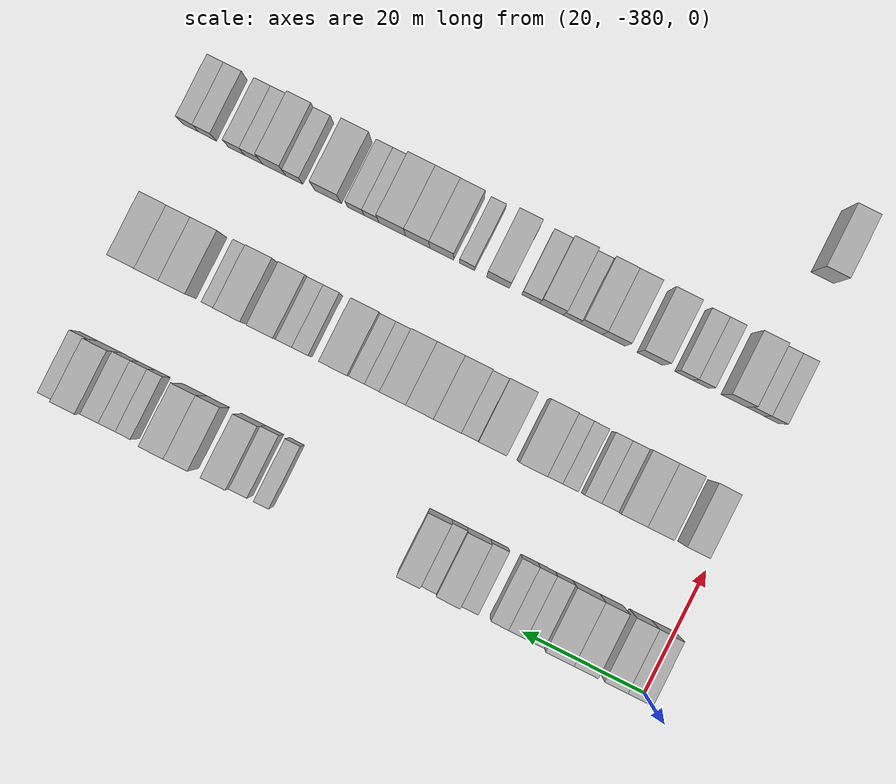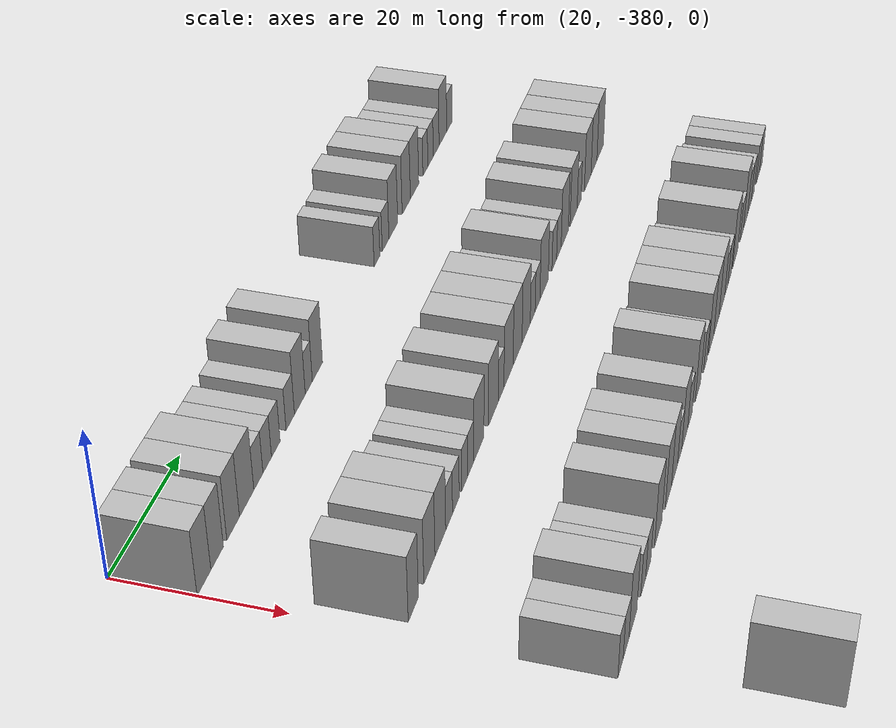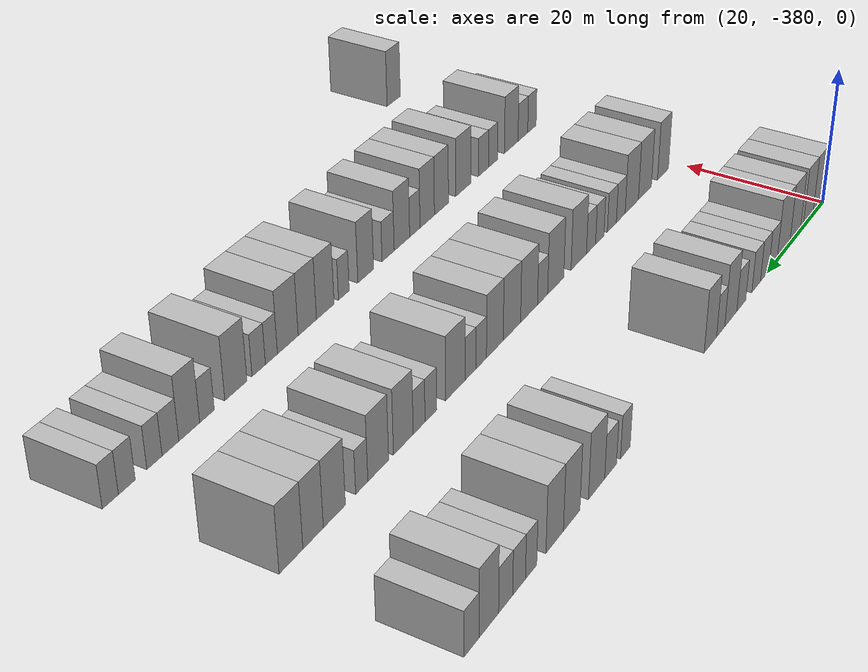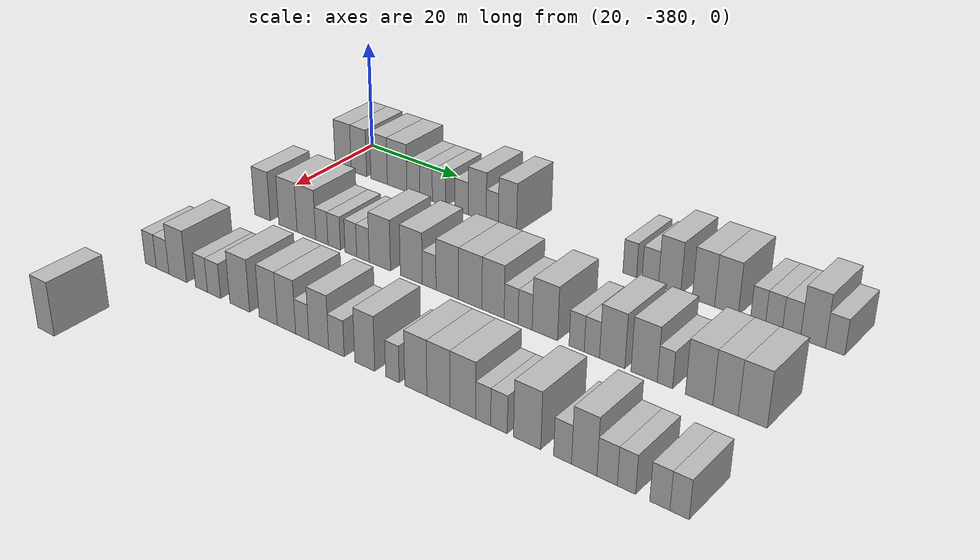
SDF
<sdf version="1.6">
 <world name="default">
  <model name="building_1">
   <static>1</static>
   <pose>25.0000 -378.0551 0 0.000000 0.000000 0.000000</pose>
   <link name="link">
    <pose>0 0 4.50 0 0 0</pose>
    <collision name="collision"><geometry><box><size>10.0000 3.8898 9.0000</size></box></geometry></collision>
    <visual name="visual">
     <cast_shadows>0</cast_shadows>
     <geometry><box><size>10.0000 3.8898 9.0000</size></box></geometry>
     <material>
      <script>
       <uri>model://HANNAS_wall/materials/scripts</uri>
       <uri>model://HANNAS_wall/materials/textures</uri>
       <name>vrc/HANNAS_wall</name>
      </script>
     </material>
    </visual>
   </link>
  </model>
  <model name="building_2">
   <static>1</static>
   <pose>25.0000 -374.2977 0 0.000000 0.000000 0.000000</pose>
   <link name="link">
    <pose>0 0 4.50 0 0 0</pose>
    <collision name="collision"><geometry><box><size>10.0000 3.6250 9.0000</size></box></geometry></collision>
    <visual name="visual">
     <cast_shadows>0</cast_shadows>
     <geometry><box><size>10.0000 3.6250 9.0000</size></box></geometry>
     <material>
      <script>
       <uri>model://HANNAS_wall/materials/scripts</uri>
       <uri>model://HANNAS_wall/materials/textures</uri>
       <name>vrc/HANNAS_wall</name>
      </script>
     </material>
    </visual>
   </link>
  </model>
  <model name="building_3">
   <static>1</static>
   <pose>25.0000 -369.5927 0 0.000000 0.000000 0.000000</pose>
   <link name="link">
    <pose>0 0 4.50 0 0 0</pose>
    <collision name="collision"><geometry><box><size>10.0000 3.7850 9.0000</size></box></geometry></collision>
    <visual name="visual">
     <cast_shadows>0</cast_shadows>
     <geometry><box><size>10.0000 3.7850 9.0000</size></box></geometry>
     <material>
      <script>
       <uri>model://HANNAS_wall/materials/scripts</uri>
       <uri>model://HANNAS_wall/materials/textures</uri>
       <name>vrc/HANNAS_wall</name>
      </script>
     </material>
    </visual>
   </link>
  </model>
  <model name="building_4">
   <static>1</static>
   <pose>25.0000 -365.4799 0 0.000000 0.000000 0.000000</pose>
   <link name="link">
    <pose>0 0 4.50 0 0 0</pose>
    <collision name="collision"><geometry><box><size>10.0000 4.4405 9.0000</size></box></geometry></collision>
    <visual name="visual">
     <cast_shadows>0</cast_shadows>
     <geometry><box><size>10.0000 4.4405 9.0000</size></box></geometry>
     <material>
      <script>
       <uri>model://HANNAS_wall/materials/scripts</uri>
       <uri>model://HANNAS_wall/materials/textures</uri>
       <name>vrc/HANNAS_wall</name>
      </script>
     </material>
    </visual>
   </link>
  </model>
  <model name="building_5">
   <static>1</static>
   <pose>25.0000 -361.8172 0 0.000000 0.000000 0.000000</pose>
   <link name="link">
    <pose>0 0 3.00 0 0 0</pose>
    <collision name="collision"><geometry><box><size>10.0000 2.8849 6.0000</size></box></geometry></collision>
    <visual name="visual">
     <cast_shadows>0</cast_shadows>
     <geometry><box><size>10.0000 2.8849 6.0000</size></box></geometry>
     <material>
      <script>
       <uri>model://HANNAS_wall/materials/scripts</uri>
       <uri>model://HANNAS_wall/materials/textures</uri>
       <name>vrc/HANNAS_wall</name>
      </script>
     </material>
    </visual>
   </link>
  </model>
  <model name="building_6">
   <static>1</static>
   <pose>25.0000 -358.9868 0 0.000000 0.000000 0.000000</pose>
   <link name="link">
    <pose>0 0 3.00 0 0 0</pose>
    <collision name="collision"><geometry><box><size>10.0000 2.7758 6.0000</size></box></geometry></collision>
    <visual name="visual">
     <cast_shadows>0</cast_shadows>
     <geometry><box><size>10.0000 2.7758 6.0000</size></box></geometry>
     <material>
      <script>
       <uri>model://HANNAS_wall/materials/scripts</uri>
       <uri>model://HANNAS_wall/materials/textures</uri>
       <name>vrc/HANNAS_wall</name>
      </script>
     </material>
    </visual>
   </link>
  </model>
  <model name="building_7">
   <static>1</static>
   <pose>25.0000 -356.1821 0 0.000000 0.000000 0.000000</pose>
   <link name="link">
    <pose>0 0 3.00 0 0 0</pose>
    <collision name="collision"><geometry><box><size>10.0000 2.8337 6.0000</size></box></geometry></collision>
    <visual name="visual">
     <cast_shadows>0</cast_shadows>
     <geometry><box><size>10.0000 2.8337 6.0000</size></box></geometry>
     <material>
      <script>
       <uri>model://HANNAS_wall/materials/scripts</uri>
       <uri>model://HANNAS_wall/materials/textures</uri>
       <name>vrc/HANNAS_wall</name>
      </script>
     </material>
    </visual>
   </link>
  </model>
  <model name="building_8">
   <static>1</static>
   <pose>25.0000 -351.3265 0 0.000000 0.000000 0.000000</pose>
   <link name="link">
    <pose>0 0 3.00 0 0 0</pose>
    <collision name="collision"><geometry><box><size>10.0000 2.8775 6.0000</size></box></geometry></collision>
    <visual name="visual">
     <cast_shadows>0</cast_shadows>
     <geometry><box><size>10.0000 2.8775 6.0000</size></box></geometry>
     <material>
      <script>
       <uri>model://HANNAS_wall/materials/scripts</uri>
       <uri>model://HANNAS_wall/materials/textures</uri>
       <name>vrc/HANNAS_wall</name>
      </script>
     </material>
    </visual>
   </link>
  </model>
  <model name="building_9">
   <static>1</static>
   <pose>25.0000 -347.9965 0 0.000000 0.000000 0.000000</pose>
   <link name="link">
    <pose>0 0 4.50 0 0 0</pose>
    <collision name="collision"><geometry><box><size>10.0000 3.7824 9.0000</size></box></geometry></collision>
    <visual name="visual">
     <cast_shadows>0</cast_shadows>
     <geometry><box><size>10.0000 3.7824 9.0000</size></box></geometry>
     <material>
      <script>
       <uri>model://HANNAS_wall/materials/scripts</uri>
       <uri>model://HANNAS_wall/materials/textures</uri>
       <name>vrc/HANNAS_wall</name>
      </script>
     </material>
    </visual>
   </link>
  </model>
  <model name="building_10">
   <static>1</static>
   <pose>25.0000 -344.8504 0 0.000000 0.000000 0.000000</pose>
   <link name="link">
    <pose>0 0 3.00 0 0 0</pose>
    <collision name="collision"><geometry><box><size>10.0000 2.5098 6.0000</size></box></geometry></collision>
    <visual name="visual">
     <cast_shadows>0</cast_shadows>
     <geometry><box><size>10.0000 2.5098 6.0000</size></box></geometry>
     <material>
      <script>
       <uri>model://HANNAS_wall/materials/scripts</uri>
       <uri>model://HANNAS_wall/materials/textures</uri>
       <name>vrc/HANNAS_wall</name>
      </script>
     </material>
    </visual>
   </link>
  </model>
  <model name="building_11">
   <static>1</static>
   <pose>25.0000 -341.7378 0 0.000000 0.000000 0.000000</pose>
   <link name="link">
    <pose>0 0 4.50 0 0 0</pose>
    <collision name="collision"><geometry><box><size>10.0000 3.7155 9.0000</size></box></geometry></collision>
    <visual name="visual">
     <cast_shadows>0</cast_shadows>
     <geometry><box><size>10.0000 3.7155 9.0000</size></box></geometry>
     <material>
      <script>
       <uri>model://HANNAS_wall/materials/scripts</uri>
       <uri>model://HANNAS_wall/materials/textures</uri>
       <name>vrc/HANNAS_wall</name>
      </script>
     </material>
    </visual>
   </link>
  </model>
  <model name="building_12">
   <static>1</static>
   <pose>25.0000 -318.1949 0 0.000000 0.000000 0.000000</pose>
   <link name="link">
    <pose>0 0 3.00 0 0 0</pose>
    <collision name="collision"><geometry><box><size>10.0000 2.4568 6.0000</size></box></geometry></collision>
    <visual name="visual">
     <cast_shadows>0</cast_shadows>
     <geometry><box><size>10.0000 2.4568 6.0000</size></box></geometry>
     <material>
      <script>
       <uri>model://HANNAS_wall/materials/scripts</uri>
       <uri>model://HANNAS_wall/materials/textures</uri>
       <name>vrc/HANNAS_wall</name>
      </script>
     </material>
    </visual>
   </link>
  </model>
  <model name="building_13">
   <static>1</static>
   <pose>25.0000 -314.5028 0 0.000000 0.000000 0.000000</pose>
   <link name="link">
    <pose>0 0 3.00 0 0 0</pose>
    <collision name="collision"><geometry><box><size>10.0000 2.9275 6.0000</size></box></geometry></collision>
    <visual name="visual">
     <cast_shadows>0</cast_shadows>
     <geometry><box><size>10.0000 2.9275 6.0000</size></box></geometry>
     <material>
      <script>
       <uri>model://HANNAS_wall/materials/scripts</uri>
       <uri>model://HANNAS_wall/materials/textures</uri>
       <name>vrc/HANNAS_wall</name>
      </script>
     </material>
    </visual>
   </link>
  </model>
  <model name="building_14">
   <static>1</static>
   <pose>25.0000 -311.0786 0 0.000000 0.000000 0.000000</pose>
   <link name="link">
    <pose>0 0 4.50 0 0 0</pose>
    <collision name="collision"><geometry><box><size>10.0000 3.9210 9.0000</size></box></geometry></collision>
    <visual name="visual">
     <cast_shadows>0</cast_shadows>
     <geometry><box><size>10.0000 3.9210 9.0000</size></box></geometry>
     <material>
      <script>
       <uri>model://HANNAS_wall/materials/scripts</uri>
       <uri>model://HANNAS_wall/materials/textures</uri>
       <name>vrc/HANNAS_wall</name>
      </script>
     </material>
    </visual>
   </link>
  </model>
  <model name="building_15">
   <static>1</static>
   <pose>25.0000 -305.2178 0 0.000000 0.000000 0.000000</pose>
   <link name="link">
    <pose>0 0 4.50 0 0 0</pose>
    <collision name="collision"><geometry><box><size>10.0000 3.8006 9.0000</size></box></geometry></collision>
    <visual name="visual">
     <cast_shadows>0</cast_shadows>
     <geometry><box><size>10.0000 3.8006 9.0000</size></box></geometry>
     <material>
      <script>
       <uri>model://HANNAS_wall/materials/scripts</uri>
       <uri>model://HANNAS_wall/materials/textures</uri>
       <name>vrc/HANNAS_wall</name>
      </script>
     </material>
    </visual>
   </link>
  </model>
  <model name="building_16">
   <static>1</static>
   <pose>25.0000 -301.3512 0 0.000000 0.000000 0.000000</pose>
   <link name="link">
    <pose>0 0 4.50 0 0 0</pose>
    <collision name="collision"><geometry><box><size>10.0000 3.9326 9.0000</size></box></geometry></collision>
    <visual name="visual">
     <cast_shadows>0</cast_shadows>
     <geometry><box><size>10.0000 3.9326 9.0000</size></box></geometry>
     <material>
      <script>
       <uri>model://HANNAS_wall/materials/scripts</uri>
       <uri>model://HANNAS_wall/materials/textures</uri>
       <name>vrc/HANNAS_wall</name>
      </script>
     </material>
    </visual>
   </link>
  </model>
  <model name="building_17">
   <static>1</static>
   <pose>25.0000 -296.1705 0 0.000000 0.000000 0.000000</pose>
   <link name="link">
    <pose>0 0 3.00 0 0 0</pose>
    <collision name="collision"><geometry><box><size>10.0000 2.4288 6.0000</size></box></geometry></collision>
    <visual name="visual">
     <cast_shadows>0</cast_shadows>
     <geometry><box><size>10.0000 2.4288 6.0000</size></box></geometry>
     <material>
      <script>
       <uri>model://HANNAS_wall/materials/scripts</uri>
       <uri>model://HANNAS_wall/materials/textures</uri>
       <name>vrc/HANNAS_wall</name>
      </script>
     </material>
    </visual>
   </link>
  </model>
  <model name="building_18">
   <static>1</static>
   <pose>25.0000 -293.6115 0 0.000000 0.000000 0.000000</pose>
   <link name="link">
    <pose>0 0 3.00 0 0 0</pose>
    <collision name="collision"><geometry><box><size>10.0000 2.6891 6.0000</size></box></geometry></collision>
    <visual name="visual">
     <cast_shadows>0</cast_shadows>
     <geometry><box><size>10.0000 2.6891 6.0000</size></box></geometry>
     <material>
      <script>
       <uri>model://HANNAS_wall/materials/scripts</uri>
       <uri>model://HANNAS_wall/materials/textures</uri>
       <name>vrc/HANNAS_wall</name>
      </script>
     </material>
    </visual>
   </link>
  </model>
  <model name="building_19">
   <static>1</static>
   <pose>25.0000 -290.8192 0 0.000000 0.000000 0.000000</pose>
   <link name="link">
    <pose>0 0 3.00 0 0 0</pose>
    <collision name="collision"><geometry><box><size>10.0000 2.8954 6.0000</size></box></geometry></collision>
    <visual name="visual">
     <cast_shadows>0</cast_shadows>
     <geometry><box><size>10.0000 2.8954 6.0000</size></box></geometry>
     <material>
      <script>
       <uri>model://HANNAS_wall/materials/scripts</uri>
       <uri>model://HANNAS_wall/materials/textures</uri>
       <name>vrc/HANNAS_wall</name>
      </script>
     </material>
    </visual>
   </link>
  </model>
  <model name="building_20">
   <static>1</static>
   <pose>25.0000 -287.4225 0 0.000000 0.000000 0.000000</pose>
   <link name="link">
    <pose>0 0 4.50 0 0 0</pose>
    <collision name="collision"><geometry><box><size>10.0000 3.8981 9.0000</size></box></geometry></collision>
    <visual name="visual">
     <cast_shadows>0</cast_shadows>
     <geometry><box><size>10.0000 3.8981 9.0000</size></box></geometry>
     <material>
      <script>
       <uri>model://HANNAS_wall/materials/scripts</uri>
       <uri>model://HANNAS_wall/materials/textures</uri>
       <name>vrc/HANNAS_wall</name>
      </script>
     </material>
    </visual>
   </link>
  </model>
  <model name="building_21">
   <static>1</static>
   <pose>25.0000 -284.0055 0 0.000000 0.000000 0.000000</pose>
   <link name="link">
    <pose>0 0 3.00 0 0 0</pose>
    <collision name="collision"><geometry><box><size>10.0000 2.9358 6.0000</size></box></geometry></collision>
    <visual name="visual">
     <cast_shadows>0</cast_shadows>
     <geometry><box><size>10.0000 2.9358 6.0000</size></box></geometry>
     <material>
      <script>
       <uri>model://HANNAS_wall/materials/scripts</uri>
       <uri>model://HANNAS_wall/materials/textures</uri>
       <name>vrc/HANNAS_wall</name>
      </script>
     </material>
    </visual>
   </link>
  </model>
  <model name="building_182">
   <static>1</static>
   <pose>47.0000 -376.1830 0 0.000000 0.000000 0.000000</pose>
   <link name="link">
    <pose>0 0 4.50 0 0 0</pose>
    <collision name="collision"><geometry><box><size>10.0000 3.6340 9.0000</size></box></geometry></collision>
    <visual name="visual">
     <cast_shadows>0</cast_shadows>
     <geometry><box><size>10.0000 3.6340 9.0000</size></box></geometry>
     <material>
      <script>
       <uri>model://HANNAS_wall/materials/scripts</uri>
       <uri>model://HANNAS_wall/materials/textures</uri>
       <name>vrc/HANNAS_wall</name>
      </script>
     </material>
    </visual>
   </link>
  </model>
  <model name="building_183">
   <static>1</static>
   <pose>47.0000 -370.2829 0 0.000000 0.000000 0.000000</pose>
   <link name="link">
    <pose>0 0 4.50 0 0 0</pose>
    <collision name="collision"><geometry><box><size>10.0000 4.1661 9.0000</size></box></geometry></collision>
    <visual name="visual">
     <cast_shadows>0</cast_shadows>
     <geometry><box><size>10.0000 4.1661 9.0000</size></box></geometry>
     <material>
      <script>
       <uri>model://HANNAS_wall/materials/scripts</uri>
       <uri>model://HANNAS_wall/materials/textures</uri>
       <name>vrc/HANNAS_wall</name>
      </script>
     </material>
    </visual>
   </link>
  </model>
  <model name="building_184">
   <static>1</static>
   <pose>47.0000 -366.1218 0 0.000000 0.000000 0.000000</pose>
   <link name="link">
    <pose>0 0 4.50 0 0 0</pose>
    <collision name="collision"><geometry><box><size>10.0000 4.1562 9.0000</size></box></geometry></collision>
    <visual name="visual">
     <cast_shadows>0</cast_shadows>
     <geometry><box><size>10.0000 4.1562 9.0000</size></box></geometry>
     <material>
      <script>
       <uri>model://HANNAS_wall/materials/scripts</uri>
       <uri>model://HANNAS_wall/materials/textures</uri>
       <name>vrc/HANNAS_wall</name>
      </script>
     </material>
    </visual>
   </link>
  </model>
  <model name="building_185">
   <static>1</static>
   <pose>47.0000 -362.6909 0 0.000000 0.000000 0.000000</pose>
   <link name="link">
    <pose>0 0 3.00 0 0 0</pose>
    <collision name="collision"><geometry><box><size>10.0000 2.7057 6.0000</size></box></geometry></collision>
    <visual name="visual">
     <cast_shadows>0</cast_shadows>
     <geometry><box><size>10.0000 2.7057 6.0000</size></box></geometry>
     <material>
      <script>
       <uri>model://HANNAS_wall/materials/scripts</uri>
       <uri>model://HANNAS_wall/materials/textures</uri>
       <name>vrc/HANNAS_wall</name>
      </script>
     </material>
    </visual>
   </link>
  </model>
  <model name="building_186">
   <static>1</static>
   <pose>47.0000 -359.9808 0 0.000000 0.000000 0.000000</pose>
   <link name="link">
    <pose>0 0 3.00 0 0 0</pose>
    <collision name="collision"><geometry><box><size>10.0000 2.7145 6.0000</size></box></geometry></collision>
    <visual name="visual">
     <cast_shadows>0</cast_shadows>
     <geometry><box><size>10.0000 2.7145 6.0000</size></box></geometry>
     <material>
      <script>
       <uri>model://HANNAS_wall/materials/scripts</uri>
       <uri>model://HANNAS_wall/materials/textures</uri>
       <name>vrc/HANNAS_wall</name>
      </script>
     </material>
    </visual>
   </link>
  </model>
  <model name="building_187">
   <static>1</static>
   <pose>47.0000 -356.3844 0 0.000000 0.000000 0.000000</pose>
   <link name="link">
    <pose>0 0 3.00 0 0 0</pose>
    <collision name="collision"><geometry><box><size>10.0000 2.4783 6.0000</size></box></geometry></collision>
    <visual name="visual">
     <cast_shadows>0</cast_shadows>
     <geometry><box><size>10.0000 2.4783 6.0000</size></box></geometry>
     <material>
      <script>
       <uri>model://HANNAS_wall/materials/scripts</uri>
       <uri>model://HANNAS_wall/materials/textures</uri>
       <name>vrc/HANNAS_wall</name>
      </script>
     </material>
    </visual>
   </link>
  </model>
  <model name="building_188">
   <static>1</static>
   <pose>47.0000 -353.8213 0 0.000000 0.000000 0.000000</pose>
   <link name="link">
    <pose>0 0 3.00 0 0 0</pose>
    <collision name="collision"><geometry><box><size>10.0000 2.6479 6.0000</size></box></geometry></collision>
    <visual name="visual">
     <cast_shadows>0</cast_shadows>
     <geometry><box><size>10.0000 2.6479 6.0000</size></box></geometry>
     <material>
      <script>
       <uri>model://HANNAS_wall/materials/scripts</uri>
       <uri>model://HANNAS_wall/materials/textures</uri>
       <name>vrc/HANNAS_wall</name>
      </script>
     </material>
    </visual>
   </link>
  </model>
  <model name="building_189">
   <static>1</static>
   <pose>47.0000 -350.3004 0 0.000000 0.000000 0.000000</pose>
   <link name="link">
    <pose>0 0 4.50 0 0 0</pose>
    <collision name="collision"><geometry><box><size>10.0000 4.3939 9.0000</size></box></geometry></collision>
    <visual name="visual">
     <cast_shadows>0</cast_shadows>
     <geometry><box><size>10.0000 4.3939 9.0000</size></box></geometry>
     <material>
      <script>
       <uri>model://HANNAS_wall/materials/scripts</uri>
       <uri>model://HANNAS_wall/materials/textures</uri>
       <name>vrc/HANNAS_wall</name>
      </script>
     </material>
    </visual>
   </link>
  </model>
  <model name="building_190">
   <static>1</static>
   <pose>47.0000 -343.8957 0 0.000000 0.000000 0.000000</pose>
   <link name="link">
    <pose>0 0 4.50 0 0 0</pose>
    <collision name="collision"><geometry><box><size>10.0000 4.4154 9.0000</size></box></geometry></collision>
    <visual name="visual">
     <cast_shadows>0</cast_shadows>
     <geometry><box><size>10.0000 4.4154 9.0000</size></box></geometry>
     <material>
      <script>
       <uri>model://HANNAS_wall/materials/scripts</uri>
       <uri>model://HANNAS_wall/materials/textures</uri>
       <name>vrc/HANNAS_wall</name>
      </script>
     </material>
    </visual>
   </link>
  </model>
  <model name="building_191">
   <static>1</static>
   <pose>47.0000 -340.3371 0 0.000000 0.000000 0.000000</pose>
   <link name="link">
    <pose>0 0 3.00 0 0 0</pose>
    <collision name="collision"><geometry><box><size>10.0000 2.7020 6.0000</size></box></geometry></collision>
    <visual name="visual">
     <cast_shadows>0</cast_shadows>
     <geometry><box><size>10.0000 2.7020 6.0000</size></box></geometry>
     <material>
      <script>
       <uri>model://HANNAS_wall/materials/scripts</uri>
       <uri>model://HANNAS_wall/materials/textures</uri>
       <name>vrc/HANNAS_wall</name>
      </script>
     </material>
    </visual>
   </link>
  </model>
  <model name="building_192">
   <static>1</static>
   <pose>47.0000 -336.7932 0 0.000000 0.000000 0.000000</pose>
   <link name="link">
    <pose>0 0 4.50 0 0 0</pose>
    <collision name="collision"><geometry><box><size>10.0000 4.3856 9.0000</size></box></geometry></collision>
    <visual name="visual">
     <cast_shadows>0</cast_shadows>
     <geometry><box><size>10.0000 4.3856 9.0000</size></box></geometry>
     <material>
      <script>
       <uri>model://HANNAS_wall/materials/scripts</uri>
       <uri>model://HANNAS_wall/materials/textures</uri>
       <name>vrc/HANNAS_wall</name>
      </script>
     </material>
    </visual>
   </link>
  </model>
  <model name="building_193">
   <static>1</static>
   <pose>47.0000 -332.4088 0 0.000000 0.000000 0.000000</pose>
   <link name="link">
    <pose>0 0 4.50 0 0 0</pose>
    <collision name="collision"><geometry><box><size>10.0000 4.3832 9.0000</size></box></geometry></collision>
    <visual name="visual">
     <cast_shadows>0</cast_shadows>
     <geometry><box><size>10.0000 4.3832 9.0000</size></box></geometry>
     <material>
      <script>
       <uri>model://HANNAS_wall/materials/scripts</uri>
       <uri>model://HANNAS_wall/materials/textures</uri>
       <name>vrc/HANNAS_wall</name>
      </script>
     </material>
    </visual>
   </link>
  </model>
  <model name="building_194">
   <static>1</static>
   <pose>47.0000 -328.1514 0 0.000000 0.000000 0.000000</pose>
   <link name="link">
    <pose>0 0 4.50 0 0 0</pose>
    <collision name="collision"><geometry><box><size>10.0000 4.1316 9.0000</size></box></geometry></collision>
    <visual name="visual">
     <cast_shadows>0</cast_shadows>
     <geometry><box><size>10.0000 4.1316 9.0000</size></box></geometry>
     <material>
      <script>
       <uri>model://HANNAS_wall/materials/scripts</uri>
       <uri>model://HANNAS_wall/materials/textures</uri>
       <name>vrc/HANNAS_wall</name>
      </script>
     </material>
    </visual>
   </link>
  </model>
  <model name="building_195">
   <static>1</static>
   <pose>47.0000 -324.8227 0 0.000000 0.000000 0.000000</pose>
   <link name="link">
    <pose>0 0 3.00 0 0 0</pose>
    <collision name="collision"><geometry><box><size>10.0000 2.5258 6.0000</size></box></geometry></collision>
    <visual name="visual">
     <cast_shadows>0</cast_shadows>
     <geometry><box><size>10.0000 2.5258 6.0000</size></box></geometry>
     <material>
      <script>
       <uri>model://HANNAS_wall/materials/scripts</uri>
       <uri>model://HANNAS_wall/materials/textures</uri>
       <name>vrc/HANNAS_wall</name>
      </script>
     </material>
    </visual>
   </link>
  </model>
  <model name="building_196">
   <static>1</static>
   <pose>47.0000 -322.2912 0 0.000000 0.000000 0.000000</pose>
   <link name="link">
    <pose>0 0 3.00 0 0 0</pose>
    <collision name="collision"><geometry><box><size>10.0000 2.5372 6.0000</size></box></geometry></collision>
    <visual name="visual">
     <cast_shadows>0</cast_shadows>
     <geometry><box><size>10.0000 2.5372 6.0000</size></box></geometry>
     <material>
      <script>
       <uri>model://HANNAS_wall/materials/scripts</uri>
       <uri>model://HANNAS_wall/materials/textures</uri>
       <name>vrc/HANNAS_wall</name>
      </script>
     </material>
    </visual>
   </link>
  </model>
  <model name="building_197">
   <static>1</static>
   <pose>47.0000 -318.7843 0 0.000000 0.000000 0.000000</pose>
   <link name="link">
    <pose>0 0 4.50 0 0 0</pose>
    <collision name="collision"><geometry><box><size>10.0000 4.4767 9.0000</size></box></geometry></collision>
    <visual name="visual">
     <cast_shadows>0</cast_shadows>
     <geometry><box><size>10.0000 4.4767 9.0000</size></box></geometry>
     <material>
      <script>
       <uri>model://HANNAS_wall/materials/scripts</uri>
       <uri>model://HANNAS_wall/materials/textures</uri>
       <name>vrc/HANNAS_wall</name>
      </script>
     </material>
    </visual>
   </link>
  </model>
  <model name="building_198">
   <static>1</static>
   <pose>47.0000 -313.2479 0 0.000000 0.000000 0.000000</pose>
   <link name="link">
    <pose>0 0 3.00 0 0 0</pose>
    <collision name="collision"><geometry><box><size>10.0000 2.5959 6.0000</size></box></geometry></collision>
    <visual name="visual">
     <cast_shadows>0</cast_shadows>
     <geometry><box><size>10.0000 2.5959 6.0000</size></box></geometry>
     <material>
      <script>
       <uri>model://HANNAS_wall/materials/scripts</uri>
       <uri>model://HANNAS_wall/materials/textures</uri>
       <name>vrc/HANNAS_wall</name>
      </script>
     </material>
    </visual>
   </link>
  </model>
  <model name="building_199">
   <static>1</static>
   <pose>47.0000 -310.6632 0 0.000000 0.000000 0.000000</pose>
   <link name="link">
    <pose>0 0 3.00 0 0 0</pose>
    <collision name="collision"><geometry><box><size>10.0000 2.5735 6.0000</size></box></geometry></collision>
    <visual name="visual">
     <cast_shadows>0</cast_shadows>
     <geometry><box><size>10.0000 2.5735 6.0000</size></box></geometry>
     <material>
      <script>
       <uri>model://HANNAS_wall/materials/scripts</uri>
       <uri>model://HANNAS_wall/materials/textures</uri>
       <name>vrc/HANNAS_wall</name>
      </script>
     </material>
    </visual>
   </link>
  </model>
  <model name="building_200">
   <static>1</static>
   <pose>47.0000 -307.2838 0 0.000000 0.000000 0.000000</pose>
   <link name="link">
    <pose>0 0 4.50 0 0 0</pose>
    <collision name="collision"><geometry><box><size>10.0000 4.1855 9.0000</size></box></geometry></collision>
    <visual name="visual">
     <cast_shadows>0</cast_shadows>
     <geometry><box><size>10.0000 4.1855 9.0000</size></box></geometry>
     <material>
      <script>
       <uri>model://HANNAS_wall/materials/scripts</uri>
       <uri>model://HANNAS_wall/materials/textures</uri>
       <name>vrc/HANNAS_wall</name>
      </script>
     </material>
    </visual>
   </link>
  </model>
  <model name="building_201">
   <static>1</static>
   <pose>47.0000 -302.0731 0 0.000000 0.000000 0.000000</pose>
   <link name="link">
    <pose>0 0 4.50 0 0 0</pose>
    <collision name="collision"><geometry><box><size>10.0000 4.2358 9.0000</size></box></geometry></collision>
    <visual name="visual">
     <cast_shadows>0</cast_shadows>
     <geometry><box><size>10.0000 4.2358 9.0000</size></box></geometry>
     <material>
      <script>
       <uri>model://HANNAS_wall/materials/scripts</uri>
       <uri>model://HANNAS_wall/materials/textures</uri>
       <name>vrc/HANNAS_wall</name>
      </script>
     </material>
    </visual>
   </link>
  </model>
  <model name="building_202">
   <static>1</static>
   <pose>47.0000 -298.7409 0 0.000000 0.000000 0.000000</pose>
   <link name="link">
    <pose>0 0 3.00 0 0 0</pose>
    <collision name="collision"><geometry><box><size>10.0000 2.4285 6.0000</size></box></geometry></collision>
    <visual name="visual">
     <cast_shadows>0</cast_shadows>
     <geometry><box><size>10.0000 2.4285 6.0000</size></box></geometry>
     <material>
      <script>
       <uri>model://HANNAS_wall/materials/scripts</uri>
       <uri>model://HANNAS_wall/materials/textures</uri>
       <name>vrc/HANNAS_wall</name>
      </script>
     </material>
    </visual>
   </link>
  </model>
  <model name="building_203">
   <static>1</static>
   <pose>47.0000 -293.4212 0 0.000000 0.000000 0.000000</pose>
   <link name="link">
    <pose>0 0 4.50 0 0 0</pose>
    <collision name="collision"><geometry><box><size>10.0000 4.2109 9.0000</size></box></geometry></collision>
    <visual name="visual">
     <cast_shadows>0</cast_shadows>
     <geometry><box><size>10.0000 4.2109 9.0000</size></box></geometry>
     <material>
      <script>
       <uri>model://HANNAS_wall/materials/scripts</uri>
       <uri>model://HANNAS_wall/materials/textures</uri>
       <name>vrc/HANNAS_wall</name>
      </script>
     </material>
    </visual>
   </link>
  </model>
  <model name="building_204">
   <static>1</static>
   <pose>47.0000 -289.4225 0 0.000000 0.000000 0.000000</pose>
   <link name="link">
    <pose>0 0 4.50 0 0 0</pose>
    <collision name="collision"><geometry><box><size>10.0000 3.7865 9.0000</size></box></geometry></collision>
    <visual name="visual">
     <cast_shadows>0</cast_shadows>
     <geometry><box><size>10.0000 3.7865 9.0000</size></box></geometry>
     <material>
      <script>
       <uri>model://HANNAS_wall/materials/scripts</uri>
       <uri>model://HANNAS_wall/materials/textures</uri>
       <name>vrc/HANNAS_wall</name>
      </script>
     </material>
    </visual>
   </link>
  </model>
  <model name="building_205">
   <static>1</static>
   <pose>47.0000 -285.3939 0 0.000000 0.000000 0.000000</pose>
   <link name="link">
    <pose>0 0 4.50 0 0 0</pose>
    <collision name="collision"><geometry><box><size>10.0000 4.2708 9.0000</size></box></geometry></collision>
    <visual name="visual">
     <cast_shadows>0</cast_shadows>
     <geometry><box><size>10.0000 4.2708 9.0000</size></box></geometry>
     <material>
      <script>
       <uri>model://HANNAS_wall/materials/scripts</uri>
       <uri>model://HANNAS_wall/materials/textures</uri>
       <name>vrc/HANNAS_wall</name>
      </script>
     </material>
    </visual>
   </link>
  </model>
  <model name="building_367">
   <static>1</static>
   <pose>69.0000 -378.7085 0 0.000000 0.000000 0.000000</pose>
   <link name="link">
    <pose>0 0 3.00 0 0 0</pose>
    <collision name="collision"><geometry><box><size>10.0000 2.5831 6.0000</size></box></geometry></collision>
    <visual name="visual">
     <cast_shadows>0</cast_shadows>
     <geometry><box><size>10.0000 2.5831 6.0000</size></box></geometry>
     <material>
      <script>
       <uri>model://HANNAS_wall/materials/scripts</uri>
       <uri>model://HANNAS_wall/materials/textures</uri>
       <name>vrc/HANNAS_wall</name>
      </script>
     </material>
    </visual>
   </link>
  </model>
  <model name="building_368">
   <static>1</static>
   <pose>69.0000 -375.9499 0 0.000000 0.000000 0.000000</pose>
   <link name="link">
    <pose>0 0 3.00 0 0 0</pose>
    <collision name="collision"><geometry><box><size>10.0000 2.9340 6.0000</size></box></geometry></collision>
    <visual name="visual">
     <cast_shadows>0</cast_shadows>
     <geometry><box><size>10.0000 2.9340 6.0000</size></box></geometry>
     <material>
      <script>
       <uri>model://HANNAS_wall/materials/scripts</uri>
       <uri>model://HANNAS_wall/materials/textures</uri>
       <name>vrc/HANNAS_wall</name>
      </script>
     </material>
    </visual>
   </link>
  </model>
  <model name="building_369">
   <static>1</static>
   <pose>69.0000 -372.4653 0 0.000000 0.000000 0.000000</pose>
   <link name="link">
    <pose>0 0 4.50 0 0 0</pose>
    <collision name="collision"><geometry><box><size>10.0000 4.0352 9.0000</size></box></geometry></collision>
    <visual name="visual">
     <cast_shadows>0</cast_shadows>
     <geometry><box><size>10.0000 4.0352 9.0000</size></box></geometry>
     <material>
      <script>
       <uri>model://HANNAS_wall/materials/scripts</uri>
       <uri>model://HANNAS_wall/materials/textures</uri>
       <name>vrc/HANNAS_wall</name>
      </script>
     </material>
    </visual>
   </link>
  </model>
  <model name="building_370">
   <static>1</static>
   <pose>69.0000 -367.1341 0 0.000000 0.000000 0.000000</pose>
   <link name="link">
    <pose>0 0 3.00 0 0 0</pose>
    <collision name="collision"><geometry><box><size>10.0000 2.6273 6.0000</size></box></geometry></collision>
    <visual name="visual">
     <cast_shadows>0</cast_shadows>
     <geometry><box><size>10.0000 2.6273 6.0000</size></box></geometry>
     <material>
      <script>
       <uri>model://HANNAS_wall/materials/scripts</uri>
       <uri>model://HANNAS_wall/materials/textures</uri>
       <name>vrc/HANNAS_wall</name>
      </script>
     </material>
    </visual>
   </link>
  </model>
  <model name="building_371">
   <static>1</static>
   <pose>69.0000 -364.3797 0 0.000000 0.000000 0.000000</pose>
   <link name="link">
    <pose>0 0 3.00 0 0 0</pose>
    <collision name="collision"><geometry><box><size>10.0000 2.8814 6.0000</size></box></geometry></collision>
    <visual name="visual">
     <cast_shadows>0</cast_shadows>
     <geometry><box><size>10.0000 2.8814 6.0000</size></box></geometry>
     <material>
      <script>
       <uri>model://HANNAS_wall/materials/scripts</uri>
       <uri>model://HANNAS_wall/materials/textures</uri>
       <name>vrc/HANNAS_wall</name>
      </script>
     </material>
    </visual>
   </link>
  </model>
  <model name="building_372">
   <static>1</static>
   <pose>69.0000 -358.8383 0 0.000000 0.000000 0.000000</pose>
   <link name="link">
    <pose>0 0 4.50 0 0 0</pose>
    <collision name="collision"><geometry><box><size>10.0000 4.2015 9.0000</size></box></geometry></collision>
    <visual name="visual">
     <cast_shadows>0</cast_shadows>
     <geometry><box><size>10.0000 4.2015 9.0000</size></box></geometry>
     <material>
      <script>
       <uri>model://HANNAS_wall/materials/scripts</uri>
       <uri>model://HANNAS_wall/materials/textures</uri>
       <name>vrc/HANNAS_wall</name>
      </script>
     </material>
    </visual>
   </link>
  </model>
  <model name="building_373">
   <static>1</static>
   <pose>69.0000 -352.8750 0 0.000000 0.000000 0.000000</pose>
   <link name="link">
    <pose>0 0 4.50 0 0 0</pose>
    <collision name="collision"><geometry><box><size>10.0000 3.7251 9.0000</size></box></geometry></collision>
    <visual name="visual">
     <cast_shadows>0</cast_shadows>
     <geometry><box><size>10.0000 3.7251 9.0000</size></box></geometry>
     <material>
      <script>
       <uri>model://HANNAS_wall/materials/scripts</uri>
       <uri>model://HANNAS_wall/materials/textures</uri>
       <name>vrc/HANNAS_wall</name>
      </script>
     </material>
    </visual>
   </link>
  </model>
  <model name="building_374">
   <static>1</static>
   <pose>69.0000 -349.1506 0 0.000000 0.000000 0.000000</pose>
   <link name="link">
    <pose>0 0 4.50 0 0 0</pose>
    <collision name="collision"><geometry><box><size>10.0000 3.7236 9.0000</size></box></geometry></collision>
    <visual name="visual">
     <cast_shadows>0</cast_shadows>
     <geometry><box><size>10.0000 3.7236 9.0000</size></box></geometry>
     <material>
      <script>
       <uri>model://HANNAS_wall/materials/scripts</uri>
       <uri>model://HANNAS_wall/materials/textures</uri>
       <name>vrc/HANNAS_wall</name>
      </script>
     </material>
    </visual>
   </link>
  </model>
  <model name="building_375">
   <static>1</static>
   <pose>69.0000 -345.9724 0 0.000000 0.000000 0.000000</pose>
   <link name="link">
    <pose>0 0 3.00 0 0 0</pose>
    <collision name="collision"><geometry><box><size>10.0000 2.6328 6.0000</size></box></geometry></collision>
    <visual name="visual">
     <cast_shadows>0</cast_shadows>
     <geometry><box><size>10.0000 2.6328 6.0000</size></box></geometry>
     <material>
      <script>
       <uri>model://HANNAS_wall/materials/scripts</uri>
       <uri>model://HANNAS_wall/materials/textures</uri>
       <name>vrc/HANNAS_wall</name>
      </script>
     </material>
    </visual>
   </link>
  </model>
  <model name="building_376">
   <static>1</static>
   <pose>69.0000 -342.7309 0 0.000000 0.000000 0.000000</pose>
   <link name="link">
    <pose>0 0 4.50 0 0 0</pose>
    <collision name="collision"><geometry><box><size>10.0000 3.8503 9.0000</size></box></geometry></collision>
    <visual name="visual">
     <cast_shadows>0</cast_shadows>
     <geometry><box><size>10.0000 3.8503 9.0000</size></box></geometry>
     <material>
      <script>
       <uri>model://HANNAS_wall/materials/scripts</uri>
       <uri>model://HANNAS_wall/materials/textures</uri>
       <name>vrc/HANNAS_wall</name>
      </script>
     </material>
    </visual>
   </link>
  </model>
  <model name="building_377">
   <static>1</static>
   <pose>69.0000 -339.3194 0 0.000000 0.000000 0.000000</pose>
   <link name="link">
    <pose>0 0 3.00 0 0 0</pose>
    <collision name="collision"><geometry><box><size>10.0000 2.9728 6.0000</size></box></geometry></collision>
    <visual name="visual">
     <cast_shadows>0</cast_shadows>
     <geometry><box><size>10.0000 2.9728 6.0000</size></box></geometry>
     <material>
      <script>
       <uri>model://HANNAS_wall/materials/scripts</uri>
       <uri>model://HANNAS_wall/materials/textures</uri>
       <name>vrc/HANNAS_wall</name>
      </script>
     </material>
    </visual>
   </link>
  </model>
  <model name="building_378">
   <static>1</static>
   <pose>69.0000 -333.9744 0 0.000000 0.000000 0.000000</pose>
   <link name="link">
    <pose>0 0 4.50 0 0 0</pose>
    <collision name="collision"><geometry><box><size>10.0000 3.7173 9.0000</size></box></geometry></collision>
    <visual name="visual">
     <cast_shadows>0</cast_shadows>
     <geometry><box><size>10.0000 3.7173 9.0000</size></box></geometry>
     <material>
      <script>
       <uri>model://HANNAS_wall/materials/scripts</uri>
       <uri>model://HANNAS_wall/materials/textures</uri>
       <name>vrc/HANNAS_wall</name>
      </script>
     </material>
    </visual>
   </link>
  </model>
  <model name="building_379">
   <static>1</static>
   <pose>69.0000 -328.8953 0 0.000000 0.000000 0.000000</pose>
   <link name="link">
    <pose>0 0 3.00 0 0 0</pose>
    <collision name="collision"><geometry><box><size>10.0000 2.4409 6.0000</size></box></geometry></collision>
    <visual name="visual">
     <cast_shadows>0</cast_shadows>
     <geometry><box><size>10.0000 2.4409 6.0000</size></box></geometry>
     <material>
      <script>
       <uri>model://HANNAS_wall/materials/scripts</uri>
       <uri>model://HANNAS_wall/materials/textures</uri>
       <name>vrc/HANNAS_wall</name>
      </script>
     </material>
    </visual>
   </link>
  </model>
  <model name="building_380">
   <static>1</static>
   <pose>69.0000 -324.7235 0 0.000000 0.000000 0.000000</pose>
   <link name="link">
    <pose>0 0 4.50 0 0 0</pose>
    <collision name="collision"><geometry><box><size>10.0000 3.9027 9.0000</size></box></geometry></collision>
    <visual name="visual">
     <cast_shadows>0</cast_shadows>
     <geometry><box><size>10.0000 3.9027 9.0000</size></box></geometry>
     <material>
      <script>
       <uri>model://HANNAS_wall/materials/scripts</uri>
       <uri>model://HANNAS_wall/materials/textures</uri>
       <name>vrc/HANNAS_wall</name>
      </script>
     </material>
    </visual>
   </link>
  </model>
  <model name="building_381">
   <static>1</static>
   <pose>69.0000 -320.7926 0 0.000000 0.000000 0.000000</pose>
   <link name="link">
    <pose>0 0 4.50 0 0 0</pose>
    <collision name="collision"><geometry><box><size>10.0000 3.9592 9.0000</size></box></geometry></collision>
    <visual name="visual">
     <cast_shadows>0</cast_shadows>
     <geometry><box><size>10.0000 3.9592 9.0000</size></box></geometry>
     <material>
      <script>
       <uri>model://HANNAS_wall/materials/scripts</uri>
       <uri>model://HANNAS_wall/materials/textures</uri>
       <name>vrc/HANNAS_wall</name>
      </script>
     </material>
    </visual>
   </link>
  </model>
  <model name="building_382">
   <static>1</static>
   <pose>69.0000 -316.6360 0 0.000000 0.000000 0.000000</pose>
   <link name="link">
    <pose>0 0 4.50 0 0 0</pose>
    <collision name="collision"><geometry><box><size>10.0000 4.3540 9.0000</size></box></geometry></collision>
    <visual name="visual">
     <cast_shadows>0</cast_shadows>
     <geometry><box><size>10.0000 4.3540 9.0000</size></box></geometry>
     <material>
      <script>
       <uri>model://HANNAS_wall/materials/scripts</uri>
       <uri>model://HANNAS_wall/materials/textures</uri>
       <name>vrc/HANNAS_wall</name>
      </script>
     </material>
    </visual>
   </link>
  </model>
  <model name="building_383">
   <static>1</static>
   <pose>69.0000 -313.2227 0 0.000000 0.000000 0.000000</pose>
   <link name="link">
    <pose>0 0 3.00 0 0 0</pose>
    <collision name="collision"><geometry><box><size>10.0000 2.4725 6.0000</size></box></geometry></collision>
    <visual name="visual">
     <cast_shadows>0</cast_shadows>
     <geometry><box><size>10.0000 2.4725 6.0000</size></box></geometry>
     <material>
      <script>
       <uri>model://HANNAS_wall/materials/scripts</uri>
       <uri>model://HANNAS_wall/materials/textures</uri>
       <name>vrc/HANNAS_wall</name>
      </script>
     </material>
    </visual>
   </link>
  </model>
  <model name="building_384">
   <static>1</static>
   <pose>69.0000 -310.6344 0 0.000000 0.000000 0.000000</pose>
   <link name="link">
    <pose>0 0 3.00 0 0 0</pose>
    <collision name="collision"><geometry><box><size>10.0000 2.7042 6.0000</size></box></geometry></collision>
    <visual name="visual">
     <cast_shadows>0</cast_shadows>
     <geometry><box><size>10.0000 2.7042 6.0000</size></box></geometry>
     <material>
      <script>
       <uri>model://HANNAS_wall/materials/scripts</uri>
       <uri>model://HANNAS_wall/materials/textures</uri>
       <name>vrc/HANNAS_wall</name>
      </script>
     </material>
    </visual>
   </link>
  </model>
  <model name="building_385">
   <static>1</static>
   <pose>69.0000 -306.1165 0 0.000000 0.000000 0.000000</pose>
   <link name="link">
    <pose>0 0 4.50 0 0 0</pose>
    <collision name="collision"><geometry><box><size>10.0000 4.3316 9.0000</size></box></geometry></collision>
    <visual name="visual">
     <cast_shadows>0</cast_shadows>
     <geometry><box><size>10.0000 4.3316 9.0000</size></box></geometry>
     <material>
      <script>
       <uri>model://HANNAS_wall/materials/scripts</uri>
       <uri>model://HANNAS_wall/materials/textures</uri>
       <name>vrc/HANNAS_wall</name>
      </script>
     </material>
    </visual>
   </link>
  </model>
  <model name="building_386">
   <static>1</static>
   <pose>69.0000 -300.5775 0 0.000000 0.000000 0.000000</pose>
   <link name="link">
    <pose>0 0 3.00 0 0 0</pose>
    <collision name="collision"><geometry><box><size>10.0000 2.7464 6.0000</size></box></geometry></collision>
    <visual name="visual">
     <cast_shadows>0</cast_shadows>
     <geometry><box><size>10.0000 2.7464 6.0000</size></box></geometry>
     <material>
      <script>
       <uri>model://HANNAS_wall/materials/scripts</uri>
       <uri>model://HANNAS_wall/materials/textures</uri>
       <name>vrc/HANNAS_wall</name>
      </script>
     </material>
    </visual>
   </link>
  </model>
  <model name="building_387">
   <static>1</static>
   <pose>69.0000 -297.2943 0 0.000000 0.000000 0.000000</pose>
   <link name="link">
    <pose>0 0 4.50 0 0 0</pose>
    <collision name="collision"><geometry><box><size>10.0000 3.8200 9.0000</size></box></geometry></collision>
    <visual name="visual">
     <cast_shadows>0</cast_shadows>
     <geometry><box><size>10.0000 3.8200 9.0000</size></box></geometry>
     <material>
      <script>
       <uri>model://HANNAS_wall/materials/scripts</uri>
       <uri>model://HANNAS_wall/materials/textures</uri>
       <name>vrc/HANNAS_wall</name>
      </script>
     </material>
    </visual>
   </link>
  </model>
  <model name="building_388">
   <static>1</static>
   <pose>69.0000 -293.8880 0 0.000000 0.000000 0.000000</pose>
   <link name="link">
    <pose>0 0 3.00 0 0 0</pose>
    <collision name="collision"><geometry><box><size>10.0000 2.9925 6.0000</size></box></geometry></collision>
    <visual name="visual">
     <cast_shadows>0</cast_shadows>
     <geometry><box><size>10.0000 2.9925 6.0000</size></box></geometry>
     <material>
      <script>
       <uri>model://HANNAS_wall/materials/scripts</uri>
       <uri>model://HANNAS_wall/materials/textures</uri>
       <name>vrc/HANNAS_wall</name>
      </script>
     </material>
    </visual>
   </link>
  </model>
  <model name="building_389">
   <static>1</static>
   <pose>69.0000 -291.0579 0 0.000000 0.000000 0.000000</pose>
   <link name="link">
    <pose>0 0 3.00 0 0 0</pose>
    <collision name="collision"><geometry><box><size>10.0000 2.6677 6.0000</size></box></geometry></collision>
    <visual name="visual">
     <cast_shadows>0</cast_shadows>
     <geometry><box><size>10.0000 2.6677 6.0000</size></box></geometry>
     <material>
      <script>
       <uri>model://HANNAS_wall/materials/scripts</uri>
       <uri>model://HANNAS_wall/materials/textures</uri>
       <name>vrc/HANNAS_wall</name>
      </script>
     </material>
    </visual>
   </link>
  </model>
  <model name="building_390">
   <static>1</static>
   <pose>69.0000 -286.3042 0 0.000000 0.000000 0.000000</pose>
   <link name="link">
    <pose>0 0 3.00 0 0 0</pose>
    <collision name="collision"><geometry><box><size>10.0000 2.8397 6.0000</size></box></geometry></collision>
    <visual name="visual">
     <cast_shadows>0</cast_shadows>
     <geometry><box><size>10.0000 2.8397 6.0000</size></box></geometry>
     <material>
      <script>
       <uri>model://HANNAS_wall/materials/scripts</uri>
       <uri>model://HANNAS_wall/materials/textures</uri>
       <name>vrc/HANNAS_wall</name>
      </script>
     </material>
    </visual>
   </link>
  </model>
  <model name="building_391">
   <static>1</static>
   <pose>69.0000 -283.5513 0 0.000000 0.000000 0.000000</pose>
   <link name="link">
    <pose>0 0 3.00 0 0 0</pose>
    <collision name="collision"><geometry><box><size>10.0000 2.6662 6.0000</size></box></geometry></collision>
    <visual name="visual">
     <cast_shadows>0</cast_shadows>
     <geometry><box><size>10.0000 2.6662 6.0000</size></box></geometry>
     <material>
      <script>
       <uri>model://HANNAS_wall/materials/scripts</uri>
       <uri>model://HANNAS_wall/materials/textures</uri>
       <name>vrc/HANNAS_wall</name>
      </script>
     </material>
    </visual>
   </link>
  </model>
  <model name="building_568">
   <static>1</static>
   <pose>91.0000 -376.1298 0 0.000000 0.000000 0.000000</pose>
   <link name="link">
    <pose>0 0 4.50 0 0 0</pose>
    <collision name="collision"><geometry><box><size>10.0000 3.7404 9.0000</size></box></geometry></collision>
    <visual name="visual">
     <cast_shadows>0</cast_shadows>
     <geometry><box><size>10.0000 3.7404 9.0000</size></box></geometry>
     <material>
      <script>
       <uri>model://HANNAS_wall/materials/scripts</uri>
       <uri>model://HANNAS_wall/materials/textures</uri>
       <name>vrc/HANNAS_wall</name>
      </script>
     </material>
    </visual>
   </link>
  </model>
 </world>
</sdf>
